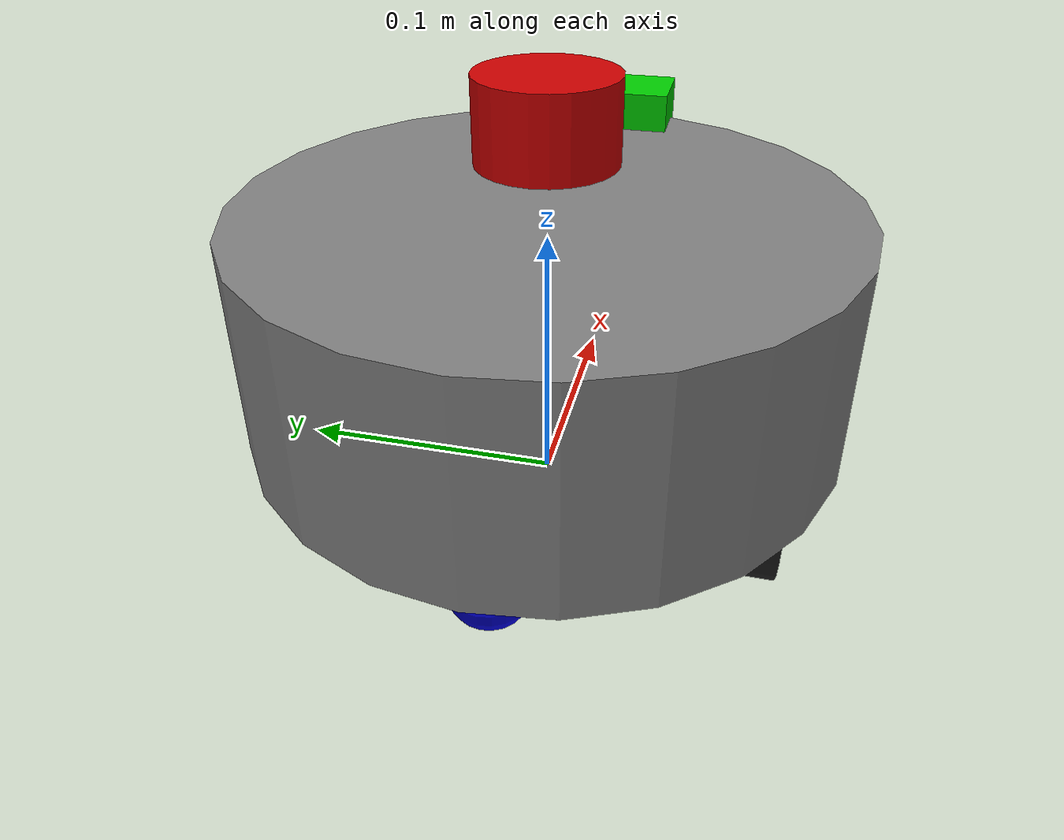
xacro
<?xml version="1.0" ?>
<robot name="robot_nav" xmlns:xacro="http://ros.org/wiki/xacro">

  <!-- ==================== 材质定义 ==================== -->
  <material name="black"><color rgba="0.1 0.1 0.1 1.0"/></material>
  <material name="grey"><color rgba="0.5 0.5 0.5 1.0"/></material>
  <material name="blue"><color rgba="0.0 0.0 0.8 1.0"/></material>
  <material name="red"><color rgba="0.8 0.0 0.0 1.0"/></material>
  <material name="green"><color rgba="0.0 0.8 0.0 1.0"/></material>

  <!-- ==================== base_footprint ==================== -->
  <link name="base_footprint"/>

  <!-- ==================== base_link（主体） ==================== -->
  <link name="base_link">
    <visual>
      <geometry><cylinder length="0.08" radius="0.11"/></geometry>
      <material name="grey"/>
    </visual>
    <collision>
      <geometry><cylinder length="0.08" radius="0.11"/></geometry>
    </collision>
    <inertial>
      <mass value="1.0"/>
      <inertia ixx="0.005" ixy="0.0" ixz="0.0"
               iyy="0.005" iyz="0.0" izz="0.008"/>
    </inertial>
  </link>

  <joint name="base_joint" type="fixed">
    <parent link="base_footprint"/>
    <child link="base_link"/>
    <origin xyz="0.0 0.0 0.073" rpy="0 0 0"/>
  </joint>

  <!-- ==================== 左轮 ==================== -->
  <link name="wheel_left_link">
    <visual>
      <geometry><cylinder length="0.018" radius="0.033"/></geometry>
      <origin xyz="0 0 0" rpy="1.5708 0 0"/>
      <material name="black"/>
    </visual>
    <collision>
      <geometry><cylinder length="0.018" radius="0.033"/></geometry>
      <origin xyz="0 0 0" rpy="1.5708 0 0"/>
    </collision>
    <inertial>
      <mass value="0.1"/>
      <inertia ixx="0.0001" ixy="0.0" ixz="0.0"
               iyy="0.0001" iyz="0.0" izz="0.0001"/>
    </inertial>
  </link>

  <joint name="wheel_left_joint" type="continuous">
    <parent link="base_link"/>
    <child link="wheel_left_link"/>
    <origin xyz="-0.03 0.08 -0.04" rpy="0 0 0"/>
    <axis xyz="0 1 0"/>
  </joint>

  <!-- ==================== 右轮 ==================== -->
  <link name="wheel_right_link">
    <visual>
      <geometry><cylinder length="0.018" radius="0.033"/></geometry>
      <origin xyz="0 0 0" rpy="1.5708 0 0"/>
      <material name="black"/>
    </visual>
    <collision>
      <geometry><cylinder length="0.018" radius="0.033"/></geometry>
      <origin xyz="0 0 0" rpy="1.5708 0 0"/>
    </collision>
    <inertial>
      <mass value="0.1"/>
      <inertia ixx="0.0001" ixy="0.0" ixz="0.0"
               iyy="0.0001" iyz="0.0" izz="0.0001"/>
    </inertial>
  </link>

  <joint name="wheel_right_joint" type="continuous">
    <parent link="base_link"/>
    <child link="wheel_right_link"/>
    <origin xyz="-0.03 -0.08 -0.04" rpy="0 0 0"/>
    <axis xyz="0 1 0"/>
  </joint>

  <!-- ==================== 万向轮（后部） ==================== -->
  <link name="caster_link">
    <visual>
      <geometry><sphere radius="0.015"/></geometry>
      <material name="blue"/>
    </visual>
    <collision>
      <geometry><sphere radius="0.015"/></geometry>
    </collision>
    <inertial>
      <mass value="0.05"/>
      <inertia ixx="0.00001" ixy="0.0" ixz="0.0"
               iyy="0.00001" iyz="0.0" izz="0.00001"/>
    </inertial>
  </link>

  <joint name="caster_joint" type="fixed">
    <parent link="base_link"/>
    <child link="caster_link"/>
    <origin xyz="-0.08 0.0 -0.058" rpy="0 0 0"/>
  </joint>

  <!-- ==================== 相机（前部，朝前） ==================== -->
  <link name="camera_link">
    <visual>
      <geometry><box size="0.03 0.06 0.03"/></geometry>
      <material name="green"/>
    </visual>
    <collision>
      <geometry><box size="0.03 0.06 0.03"/></geometry>
    </collision>
    <inertial>
      <mass value="0.05"/>
      <inertia ixx="0.00001" ixy="0.0" ixz="0.0"
               iyy="0.00001" iyz="0.0" izz="0.00001"/>
    </inertial>
  </link>

  <joint name="camera_joint" type="fixed">
    <parent link="base_link"/>
    <child link="camera_link"/>
    <origin xyz="0.1 0.0 0.04" rpy="0 0 0"/>
  </joint>

  <!-- 相机光学坐标系（ROS 标准：z 朝前，x 朝右，y 朝下） -->
  <link name="camera_optical_link"/>
  <joint name="camera_optical_joint" type="fixed">
    <parent link="camera_link"/>
    <child link="camera_optical_link"/>
    <origin xyz="0 0 0" rpy="-1.5708 0 -1.5708"/>
  </joint>

  <!-- ==================== 激光雷达（顶部） ==================== -->
  <link name="laser_link">
    <visual>
      <geometry><cylinder length="0.03" radius="0.025"/></geometry>
      <material name="red"/>
    </visual>
    <collision>
      <geometry><cylinder length="0.03" radius="0.025"/></geometry>
    </collision>
    <inertial>
      <mass value="0.1"/>
      <inertia ixx="0.00005" ixy="0.0" ixz="0.0"
               iyy="0.00005" iyz="0.0" izz="0.00005"/>
    </inertial>
  </link>

  <joint name="laser_joint" type="fixed">
    <parent link="base_link"/>
    <child link="laser_link"/>
    <origin xyz="0.0 0.0 0.07" rpy="0 0 0"/>
  </joint>

  <!-- ==================== Gazebo 插件 ==================== -->

  <!-- 差速驱动控制器 -->
  <gazebo>
    <plugin name="diff_drive" filename="libgazebo_ros_diff_drive.so">
      <ros>
        <remapping>cmd_vel:=/cmd_vel</remapping>
        <remapping>odom:=/odom</remapping>
      </ros>
      <left_joint>wheel_left_joint</left_joint>
      <right_joint>wheel_right_joint</right_joint>
      <wheel_separation>0.16</wheel_separation>
      <wheel_diameter>0.066</wheel_diameter>
      <max_wheel_torque>1.0</max_wheel_torque>
      <max_wheel_acceleration>1.0</max_wheel_acceleration>
      <publish_odom>true</publish_odom>
      <publish_odom_tf>true</publish_odom_tf>
      <publish_wheel_tf>false</publish_wheel_tf>
      <odometry_frame>odom</odometry_frame>
      <robot_base_frame>base_footprint</robot_base_frame>
      <update_rate>20</update_rate>
    </plugin>
  </gazebo>

  <!-- 相机传感器 -->
  <gazebo reference="camera_link">
    <sensor type="camera" name="camera">
      <always_on>true</always_on>
      <update_rate>30</update_rate>
      <camera name="head">
        <horizontal_fov>1.047</horizontal_fov>
        <image>
          <width>640</width>
          <height>480</height>
          <format>R8G8B8</format>
        </image>
        <clip>
          <near>0.05</near>
          <far>10.0</far>
        </clip>
      </camera>
      <plugin name="camera_plugin" filename="libgazebo_ros_camera.so">
        <ros>
          <remapping>image_raw:=/camera/image_raw</remapping>
          <remapping>camera_info:=/camera/camera_info</remapping>
        </ros>
        <camera_name>camera</camera_name>
        <frame_name>camera_optical_link</frame_name>
      </plugin>
    </sensor>
  </gazebo>

  <!-- 2D 激光雷达 -->
  <gazebo reference="laser_link">
    <sensor type="ray" name="laser">
      <always_on>true</always_on>
      <update_rate>10</update_rate>
      <ray>
        <scan>
          <horizontal>
            <samples>360</samples>
            <resolution>1</resolution>
            <min_angle>0.0</min_angle>
            <max_angle>6.2832</max_angle>
          </horizontal>
        </scan>
        <range>
          <min>0.05</min>
          <max>8.0</max>
          <resolution>0.01</resolution>
        </range>
      </ray>
      <plugin name="laser_plugin" filename="libgazebo_ros_ray_sensor.so">
        <ros>
          <remapping>~/out:=/scan</remapping>
        </ros>
        <output_type>sensor_msgs/LaserScan</output_type>
        <frame_name>laser_link</frame_name>
      </plugin>
    </sensor>
  </gazebo>

  <!-- Gazebo 材质 -->
  <gazebo reference="base_link"><material>Gazebo/Grey</material></gazebo>
  <gazebo reference="wheel_left_link"><material>Gazebo/Black</material></gazebo>
  <gazebo reference="wheel_right_link"><material>Gazebo/Black</material></gazebo>
  <gazebo reference="caster_link"><material>Gazebo/Blue</material></gazebo>
  <gazebo reference="camera_link"><material>Gazebo/Green</material></gazebo>
  <gazebo reference="laser_link"><material>Gazebo/Red</material></gazebo>

</robot>
